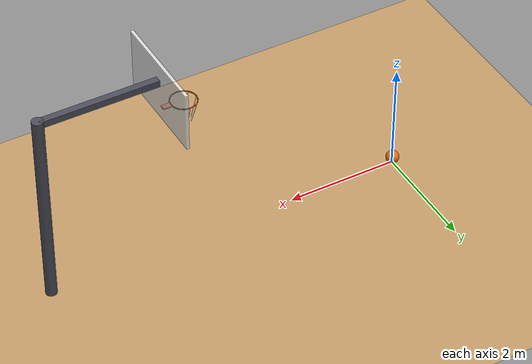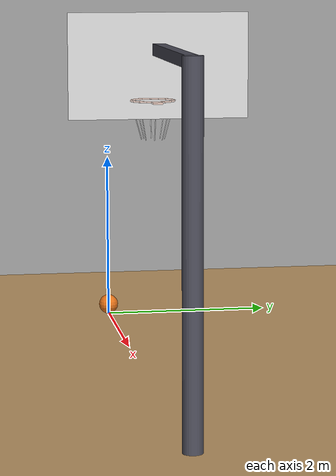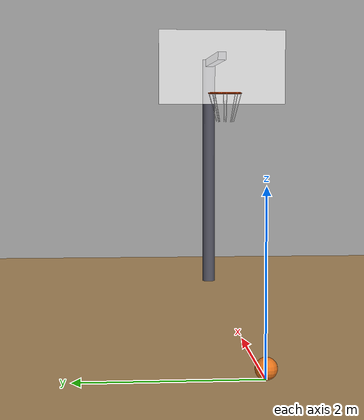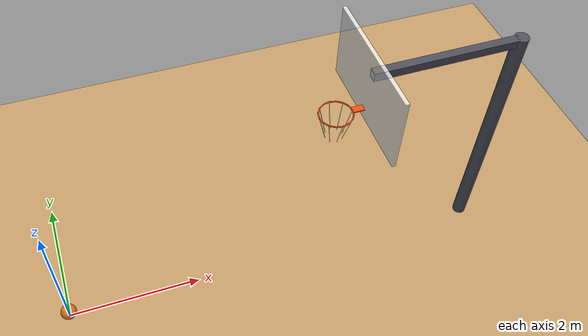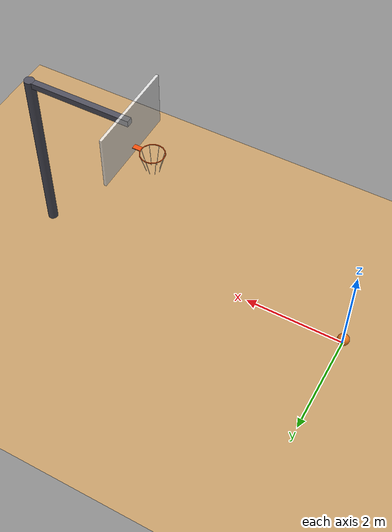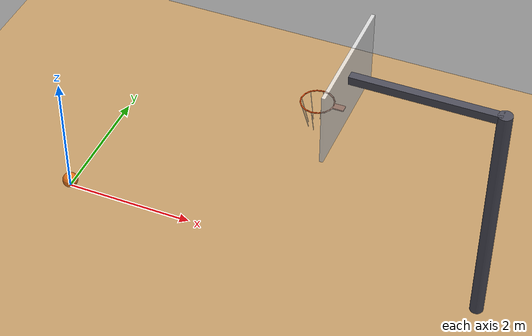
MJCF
<mujoco model="basketball_shot">
  <option timestep="0.002" gravity="0 0 -9.81"/>
  <visual>
    <global offwidth="1280" offheight="720"/>
  </visual>
  <worldbody>
    <light name="sun" pos="2 -3 8" dir="0 0.3 -1" directional="true"/>
    <geom name="floor" type="plane" pos="0 0 0" size="10 10 0.1" rgba="0.75 0.6 0.4 1"/>

    <body name="ball" pos="0 0 0.12">
      <freejoint/>
      <inertial pos="0 0 0" mass="0.62" diaginertia="0.00595 0.00595 0.00595"/>
      <geom name="ball" type="sphere" size="0.12" rgba="0.9 0.45 0.1 1" solref="0.01 0.15" friction="0.8 0.01 0.001"/>
    </body>

    <body name="hoop" pos="4 0 3.05">
      <geom name="rim_00" type="capsule" size="0.009" fromto="0.2286 0 0 0.2112 0.0875 0" rgba="0.9 0.3 0.05 1"/>
      <geom name="rim_01" type="capsule" size="0.009" fromto="0.2112 0.0875 0 0.1616 0.1616 0" rgba="0.9 0.3 0.05 1"/>
      <geom name="rim_02" type="capsule" size="0.009" fromto="0.1616 0.1616 0 0.0875 0.2112 0" rgba="0.9 0.3 0.05 1"/>
      <geom name="rim_03" type="capsule" size="0.009" fromto="0.0875 0.2112 0 0 0.2286 0" rgba="0.9 0.3 0.05 1"/>
      <geom name="rim_04" type="capsule" size="0.009" fromto="0 0.2286 0 -0.0875 0.2112 0" rgba="0.9 0.3 0.05 1"/>
      <geom name="rim_05" type="capsule" size="0.009" fromto="-0.0875 0.2112 0 -0.1616 0.1616 0" rgba="0.9 0.3 0.05 1"/>
      <geom name="rim_06" type="capsule" size="0.009" fromto="-0.1616 0.1616 0 -0.2112 0.0875 0" rgba="0.9 0.3 0.05 1"/>
      <geom name="rim_07" type="capsule" size="0.009" fromto="-0.2112 0.0875 0 -0.2286 0 0" rgba="0.9 0.3 0.05 1"/>
      <geom name="rim_08" type="capsule" size="0.009" fromto="-0.2286 0 0 -0.2112 -0.0875 0" rgba="0.9 0.3 0.05 1"/>
      <geom name="rim_09" type="capsule" size="0.009" fromto="-0.2112 -0.0875 0 -0.1616 -0.1616 0" rgba="0.9 0.3 0.05 1"/>
      <geom name="rim_10" type="capsule" size="0.009" fromto="-0.1616 -0.1616 0 -0.0875 -0.2112 0" rgba="0.9 0.3 0.05 1"/>
      <geom name="rim_11" type="capsule" size="0.009" fromto="-0.0875 -0.2112 0 0 -0.2286 0" rgba="0.9 0.3 0.05 1"/>
      <geom name="rim_12" type="capsule" size="0.009" fromto="0 -0.2286 0 0.0875 -0.2112 0" rgba="0.9 0.3 0.05 1"/>
      <geom name="rim_13" type="capsule" size="0.009" fromto="0.0875 -0.2112 0 0.1616 -0.1616 0" rgba="0.9 0.3 0.05 1"/>
      <geom name="rim_14" type="capsule" size="0.009" fromto="0.1616 -0.1616 0 0.2112 -0.0875 0" rgba="0.9 0.3 0.05 1"/>
      <geom name="rim_15" type="capsule" size="0.009" fromto="0.2112 -0.0875 0 0.2286 0 0" rgba="0.9 0.3 0.05 1"/>
      <geom name="bracket" type="box" pos="0.305 0 0" size="0.076 0.05 0.008" rgba="0.9 0.3 0.05 1"/>
      <geom name="net_0" type="capsule" size="0.004" fromto="0.2286 0 0 0.12 0 -0.4" contype="0" conaffinity="0" rgba="1 1 1 0.6"/>
      <geom name="net_1" type="capsule" size="0.004" fromto="-0.2286 0 0 -0.12 0 -0.4" contype="0" conaffinity="0" rgba="1 1 1 0.6"/>
      <geom name="net_2" type="capsule" size="0.004" fromto="0 0.2286 0 0 0.12 -0.4" contype="0" conaffinity="0" rgba="1 1 1 0.6"/>
      <geom name="net_3" type="capsule" size="0.004" fromto="0 -0.2286 0 0 -0.12 -0.4" contype="0" conaffinity="0" rgba="1 1 1 0.6"/>
      <geom name="net_4" type="capsule" size="0.004" fromto="0.1616 0.1616 0 0.085 0.085 -0.4" contype="0" conaffinity="0" rgba="1 1 1 0.6"/>
      <geom name="net_5" type="capsule" size="0.004" fromto="-0.1616 0.1616 0 -0.085 0.085 -0.4" contype="0" conaffinity="0" rgba="1 1 1 0.6"/>
      <geom name="net_6" type="capsule" size="0.004" fromto="-0.1616 -0.1616 0 -0.085 -0.085 -0.4" contype="0" conaffinity="0" rgba="1 1 1 0.6"/>
      <geom name="net_7" type="capsule" size="0.004" fromto="0.1616 -0.1616 0 0.085 -0.085 -0.4" contype="0" conaffinity="0" rgba="1 1 1 0.6"/>
    </body>

    <body name="backboard_support" pos="0 0 0">
      <geom name="backboard" type="box" pos="4.406 0 3.435" size="0.025 0.915 0.535" rgba="0.95 0.95 0.95 0.8"/>
      <geom name="support_arm" type="box" pos="5.455 0 3.6" size="1.025 0.06 0.06" rgba="0.3 0.3 0.35 1"/>
      <geom name="pole" type="cylinder" pos="6.5 0 1.83" size="0.1 1.83" rgba="0.3 0.3 0.35 1"/>
    </body>
  </worldbody>

  <keyframe>
    <key name="start" qpos="0 0 0.12 1 0 0 0" qvel="3.193 0 8.484 0 0 0"/>
  </keyframe>
</mujoco>
